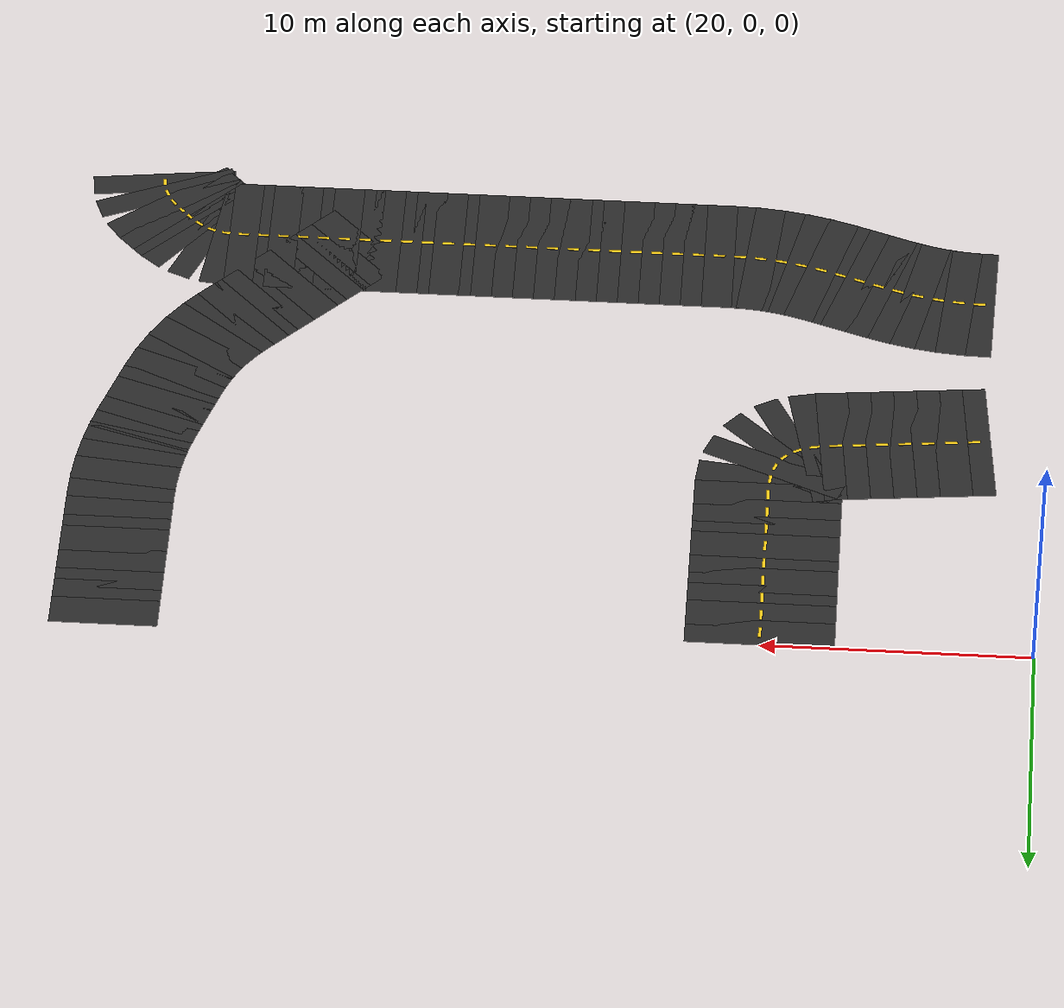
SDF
<sdf version="1.7">
 <world name="campus_delivery">
  <model name="campus_roads">
   <static>true</static>
   <link name="south_service_loop_0052">
    <pose>22.398 -18.013 0.002 0 0 -0.031775</pose>
    <visual name="visual">
     <geometry><box><size>1.146 5.500 0.004</size></box></geometry>
     <material><ambient>0.160 0.160 0.160 1.000</ambient><diffuse>0.160 0.160 0.160 1.000</diffuse></material>
    </visual>
    <visual name="center_line">
     <pose>0 0 0.008 0 0 0</pose>
     <geometry><box><size>0.438 0.120 0.012</size></box></geometry>
     <material><ambient>0.950 0.780 0.080 1.000</ambient><diffuse>0.950 0.780 0.080 1.000</diffuse></material>
    </visual>
   </link>
   <link name="south_service_loop_0053">
    <pose>23.190 -18.063 0.002 0 0 -0.096055</pose>
    <visual name="visual">
     <geometry><box><size>1.141 5.500 0.004</size></box></geometry>
     <material><ambient>0.160 0.160 0.160 1.000</ambient><diffuse>0.160 0.160 0.160 1.000</diffuse></material>
    </visual>
    <visual name="center_line">
     <pose>0 0 0.008 0 0 0</pose>
     <geometry><box><size>0.435 0.120 0.012</size></box></geometry>
     <material><ambient>0.950 0.780 0.080 1.000</ambient><diffuse>0.950 0.780 0.080 1.000</diffuse></material>
    </visual>
   </link>
   <link name="south_service_loop_0054">
    <pose>23.973 -18.164 0.002 0 0 -0.160875</pose>
    <visual name="visual">
     <geometry><box><size>1.140 5.500 0.004</size></box></geometry>
     <material><ambient>0.160 0.160 0.160 1.000</ambient><diffuse>0.160 0.160 0.160 1.000</diffuse></material>
    </visual>
    <visual name="center_line">
     <pose>0 0 0.008 0 0 0</pose>
     <geometry><box><size>0.434 0.120 0.012</size></box></geometry>
     <material><ambient>0.950 0.780 0.080 1.000</ambient><diffuse>0.950 0.780 0.080 1.000</diffuse></material>
    </visual>
   </link>
   <link name="south_service_loop_0055">
    <pose>24.749 -18.316 0.002 0 0 -0.225695</pose>
    <visual name="visual">
     <geometry><box><size>1.141 5.500 0.004</size></box></geometry>
     <material><ambient>0.160 0.160 0.160 1.000</ambient><diffuse>0.160 0.160 0.160 1.000</diffuse></material>
    </visual>
    <visual name="center_line">
     <pose>0 0 0.008 0 0 0</pose>
     <geometry><box><size>0.435 0.120 0.012</size></box></geometry>
     <material><ambient>0.950 0.780 0.080 1.000</ambient><diffuse>0.950 0.780 0.080 1.000</diffuse></material>
    </visual>
   </link>
   <link name="south_service_loop_0056">
    <pose>25.516 -18.519 0.002 0 0 -0.289975</pose>
    <visual name="visual">
     <geometry><box><size>1.146 5.500 0.004</size></box></geometry>
     <material><ambient>0.160 0.160 0.160 1.000</ambient><diffuse>0.160 0.160 0.160 1.000</diffuse></material>
    </visual>
    <visual name="center_line">
     <pose>0 0 0.008 0 0 0</pose>
     <geometry><box><size>0.438 0.120 0.012</size></box></geometry>
     <material><ambient>0.950 0.780 0.080 1.000</ambient><diffuse>0.950 0.780 0.080 1.000</diffuse></material>
    </visual>
   </link>
   <link name="south_service_loop_0057">
    <pose>26.265 -18.755 0.002 0 0 -0.321751</pose>
    <visual name="visual">
     <geometry><box><size>1.125 5.500 0.004</size></box></geometry>
     <material><ambient>0.160 0.160 0.160 1.000</ambient><diffuse>0.160 0.160 0.160 1.000</diffuse></material>
    </visual>
    <visual name="center_line">
     <pose>0 0 0.008 0 0 0</pose>
     <geometry><box><size>0.426 0.120 0.012</size></box></geometry>
     <material><ambient>0.950 0.780 0.080 1.000</ambient><diffuse>0.950 0.780 0.080 1.000</diffuse></material>
    </visual>
   </link>
   <link name="south_service_loop_0058">
    <pose>27.000 -19.000 0.002 0 0 -0.321751</pose>
    <visual name="visual">
     <geometry><box><size>1.125 5.500 0.004</size></box></geometry>
     <material><ambient>0.160 0.160 0.160 1.000</ambient><diffuse>0.160 0.160 0.160 1.000</diffuse></material>
    </visual>
    <visual name="center_line">
     <pose>0 0 0.008 0 0 0</pose>
     <geometry><box><size>0.426 0.120 0.012</size></box></geometry>
     <material><ambient>0.950 0.780 0.080 1.000</ambient><diffuse>0.950 0.780 0.080 1.000</diffuse></material>
    </visual>
   </link>
   <link name="south_service_loop_0059">
    <pose>27.735 -19.245 0.002 0 0 -0.321751</pose>
    <visual name="visual">
     <geometry><box><size>1.125 5.500 0.004</size></box></geometry>
     <material><ambient>0.160 0.160 0.160 1.000</ambient><diffuse>0.160 0.160 0.160 1.000</diffuse></material>
    </visual>
    <visual name="center_line">
     <pose>0 0 0.008 0 0 0</pose>
     <geometry><box><size>0.426 0.120 0.012</size></box></geometry>
     <material><ambient>0.950 0.780 0.080 1.000</ambient><diffuse>0.950 0.780 0.080 1.000</diffuse></material>
    </visual>
   </link>
   <link name="south_service_loop_0060">
    <pose>28.484 -19.481 0.002 0 0 -0.289975</pose>
    <visual name="visual">
     <geometry><box><size>1.146 5.500 0.004</size></box></geometry>
     <material><ambient>0.160 0.160 0.160 1.000</ambient><diffuse>0.160 0.160 0.160 1.000</diffuse></material>
    </visual>
    <visual name="center_line">
     <pose>0 0 0.008 0 0 0</pose>
     <geometry><box><size>0.438 0.120 0.012</size></box></geometry>
     <material><ambient>0.950 0.780 0.080 1.000</ambient><diffuse>0.950 0.780 0.080 1.000</diffuse></material>
    </visual>
   </link>
   <link name="south_service_loop_0061">
    <pose>29.251 -19.684 0.002 0 0 -0.225695</pose>
    <visual name="visual">
     <geometry><box><size>1.141 5.500 0.004</size></box></geometry>
     <material><ambient>0.160 0.160 0.160 1.000</ambient><diffuse>0.160 0.160 0.160 1.000</diffuse></material>
    </visual>
    <visual name="center_line">
     <pose>0 0 0.008 0 0 0</pose>
     <geometry><box><size>0.435 0.120 0.012</size></box></geometry>
     <material><ambient>0.950 0.780 0.080 1.000</ambient><diffuse>0.950 0.780 0.080 1.000</diffuse></material>
    </visual>
   </link>
   <link name="south_service_loop_0062">
    <pose>30.027 -19.836 0.002 0 0 -0.160875</pose>
    <visual name="visual">
     <geometry><box><size>1.140 5.500 0.004</size></box></geometry>
     <material><ambient>0.160 0.160 0.160 1.000</ambient><diffuse>0.160 0.160 0.160 1.000</diffuse></material>
    </visual>
    <visual name="center_line">
     <pose>0 0 0.008 0 0 0</pose>
     <geometry><box><size>0.434 0.120 0.012</size></box></geometry>
     <material><ambient>0.950 0.780 0.080 1.000</ambient><diffuse>0.950 0.780 0.080 1.000</diffuse></material>
    </visual>
   </link>
   <link name="south_service_loop_0063">
    <pose>30.810 -19.937 0.002 0 0 -0.096055</pose>
    <visual name="visual">
     <geometry><box><size>1.141 5.500 0.004</size></box></geometry>
     <material><ambient>0.160 0.160 0.160 1.000</ambient><diffuse>0.160 0.160 0.160 1.000</diffuse></material>
    </visual>
    <visual name="center_line">
     <pose>0 0 0.008 0 0 0</pose>
     <geometry><box><size>0.435 0.120 0.012</size></box></geometry>
     <material><ambient>0.950 0.780 0.080 1.000</ambient><diffuse>0.950 0.780 0.080 1.000</diffuse></material>
    </visual>
   </link>
   <link name="south_service_loop_0064">
    <pose>31.602 -19.987 0.002 0 0 -0.031775</pose>
    <visual name="visual">
     <geometry><box><size>1.146 5.500 0.004</size></box></geometry>
     <material><ambient>0.160 0.160 0.160 1.000</ambient><diffuse>0.160 0.160 0.160 1.000</diffuse></material>
    </visual>
    <visual name="center_line">
     <pose>0 0 0.008 0 0 0</pose>
     <geometry><box><size>0.438 0.120 0.012</size></box></geometry>
     <material><ambient>0.950 0.780 0.080 1.000</ambient><diffuse>0.950 0.780 0.080 1.000</diffuse></material>
    </visual>
   </link>
   <link name="south_service_loop_0065">
    <pose>32.400 -20.000 0.002 0 0 0.000000</pose>
    <visual name="visual">
     <geometry><box><size>1.150 5.500 0.004</size></box></geometry>
     <material><ambient>0.160 0.160 0.160 1.000</ambient><diffuse>0.160 0.160 0.160 1.000</diffuse></material>
    </visual>
    <visual name="center_line">
     <pose>0 0 0.008 0 0 0</pose>
     <geometry><box><size>0.440 0.120 0.012</size></box></geometry>
     <material><ambient>0.950 0.780 0.080 1.000</ambient><diffuse>0.950 0.780 0.080 1.000</diffuse></material>
    </visual>
   </link>
   <link name="south_service_loop_0066">
    <pose>33.200 -20.000 0.002 0 0 0.000000</pose>
    <visual name="visual">
     <geometry><box><size>1.150 5.500 0.004</size></box></geometry>
     <material><ambient>0.160 0.160 0.160 1.000</ambient><diffuse>0.160 0.160 0.160 1.000</diffuse></material>
    </visual>
    <visual name="center_line">
     <pose>0 0 0.008 0 0 0</pose>
     <geometry><box><size>0.440 0.120 0.012</size></box></geometry>
     <material><ambient>0.950 0.780 0.080 1.000</ambient><diffuse>0.950 0.780 0.080 1.000</diffuse></material>
    </visual>
   </link>
   <link name="south_service_loop_0067">
    <pose>34.000 -20.000 0.002 0 0 0.000000</pose>
    <visual name="visual">
     <geometry><box><size>1.150 5.500 0.004</size></box></geometry>
     <material><ambient>0.160 0.160 0.160 1.000</ambient><diffuse>0.160 0.160 0.160 1.000</diffuse></material>
    </visual>
    <visual name="center_line">
     <pose>0 0 0.008 0 0 0</pose>
     <geometry><box><size>0.440 0.120 0.012</size></box></geometry>
     <material><ambient>0.950 0.780 0.080 1.000</ambient><diffuse>0.950 0.780 0.080 1.000</diffuse></material>
    </visual>
   </link>
   <link name="south_service_loop_0068">
    <pose>34.800 -20.000 0.002 0 0 0.000000</pose>
    <visual name="visual">
     <geometry><box><size>1.150 5.500 0.004</size></box></geometry>
     <material><ambient>0.160 0.160 0.160 1.000</ambient><diffuse>0.160 0.160 0.160 1.000</diffuse></material>
    </visual>
    <visual name="center_line">
     <pose>0 0 0.008 0 0 0</pose>
     <geometry><box><size>0.440 0.120 0.012</size></box></geometry>
     <material><ambient>0.950 0.780 0.080 1.000</ambient><diffuse>0.950 0.780 0.080 1.000</diffuse></material>
    </visual>
   </link>
   <link name="south_service_loop_0069">
    <pose>35.600 -20.000 0.002 0 0 0.000000</pose>
    <visual name="visual">
     <geometry><box><size>1.150 5.500 0.004</size></box></geometry>
     <material><ambient>0.160 0.160 0.160 1.000</ambient><diffuse>0.160 0.160 0.160 1.000</diffuse></material>
    </visual>
    <visual name="center_line">
     <pose>0 0 0.008 0 0 0</pose>
     <geometry><box><size>0.440 0.120 0.012</size></box></geometry>
     <material><ambient>0.950 0.780 0.080 1.000</ambient><diffuse>0.950 0.780 0.080 1.000</diffuse></material>
    </visual>
   </link>
   <link name="south_service_loop_0070">
    <pose>36.400 -20.000 0.002 0 0 -0.000000</pose>
    <visual name="visual">
     <geometry><box><size>1.150 5.500 0.004</size></box></geometry>
     <material><ambient>0.160 0.160 0.160 1.000</ambient><diffuse>0.160 0.160 0.160 1.000</diffuse></material>
    </visual>
    <visual name="center_line">
     <pose>0 0 0.008 0 0 0</pose>
     <geometry><box><size>0.440 0.120 0.012</size></box></geometry>
     <material><ambient>0.950 0.780 0.080 1.000</ambient><diffuse>0.950 0.780 0.080 1.000</diffuse></material>
    </visual>
   </link>
   <link name="south_service_loop_0071">
    <pose>37.200 -20.000 0.002 0 0 0.000000</pose>
    <visual name="visual">
     <geometry><box><size>1.150 5.500 0.004</size></box></geometry>
     <material><ambient>0.160 0.160 0.160 1.000</ambient><diffuse>0.160 0.160 0.160 1.000</diffuse></material>
    </visual>
    <visual name="center_line">
     <pose>0 0 0.008 0 0 0</pose>
     <geometry><box><size>0.440 0.120 0.012</size></box></geometry>
     <material><ambient>0.950 0.780 0.080 1.000</ambient><diffuse>0.950 0.780 0.080 1.000</diffuse></material>
    </visual>
   </link>
   <link name="south_service_loop_0072">
    <pose>38.000 -20.000 0.002 0 0 -0.000000</pose>
    <visual name="visual">
     <geometry><box><size>1.150 5.500 0.004</size></box></geometry>
     <material><ambient>0.160 0.160 0.160 1.000</ambient><diffuse>0.160 0.160 0.160 1.000</diffuse></material>
    </visual>
    <visual name="center_line">
     <pose>0 0 0.008 0 0 0</pose>
     <geometry><box><size>0.440 0.120 0.012</size></box></geometry>
     <material><ambient>0.950 0.780 0.080 1.000</ambient><diffuse>0.950 0.780 0.080 1.000</diffuse></material>
    </visual>
   </link>
   <link name="south_service_loop_0073">
    <pose>38.800 -20.000 0.002 0 0 0.000000</pose>
    <visual name="visual">
     <geometry><box><size>1.150 5.500 0.004</size></box></geometry>
     <material><ambient>0.160 0.160 0.160 1.000</ambient><diffuse>0.160 0.160 0.160 1.000</diffuse></material>
    </visual>
    <visual name="center_line">
     <pose>0 0 0.008 0 0 0</pose>
     <geometry><box><size>0.440 0.120 0.012</size></box></geometry>
     <material><ambient>0.950 0.780 0.080 1.000</ambient><diffuse>0.950 0.780 0.080 1.000</diffuse></material>
    </visual>
   </link>
   <link name="south_service_loop_0074">
    <pose>39.600 -20.000 0.002 0 0 0.000000</pose>
    <visual name="visual">
     <geometry><box><size>1.150 5.500 0.004</size></box></geometry>
     <material><ambient>0.160 0.160 0.160 1.000</ambient><diffuse>0.160 0.160 0.160 1.000</diffuse></material>
    </visual>
    <visual name="center_line">
     <pose>0 0 0.008 0 0 0</pose>
     <geometry><box><size>0.440 0.120 0.012</size></box></geometry>
     <material><ambient>0.950 0.780 0.080 1.000</ambient><diffuse>0.950 0.780 0.080 1.000</diffuse></material>
    </visual>
   </link>
   <link name="south_service_loop_0075">
    <pose>40.400 -20.000 0.002 0 0 0.000000</pose>
    <visual name="visual">
     <geometry><box><size>1.150 5.500 0.004</size></box></geometry>
     <material><ambient>0.160 0.160 0.160 1.000</ambient><diffuse>0.160 0.160 0.160 1.000</diffuse></material>
    </visual>
    <visual name="center_line">
     <pose>0 0 0.008 0 0 0</pose>
     <geometry><box><size>0.440 0.120 0.012</size></box></geometry>
     <material><ambient>0.950 0.780 0.080 1.000</ambient><diffuse>0.950 0.780 0.080 1.000</diffuse></material>
    </visual>
   </link>
   <link name="south_service_loop_0076">
    <pose>41.200 -20.000 0.002 0 0 0.000000</pose>
    <visual name="visual">
     <geometry><box><size>1.150 5.500 0.004</size></box></geometry>
     <material><ambient>0.160 0.160 0.160 1.000</ambient><diffuse>0.160 0.160 0.160 1.000</diffuse></material>
    </visual>
    <visual name="center_line">
     <pose>0 0 0.008 0 0 0</pose>
     <geometry><box><size>0.440 0.120 0.012</size></box></geometry>
     <material><ambient>0.950 0.780 0.080 1.000</ambient><diffuse>0.950 0.780 0.080 1.000</diffuse></material>
    </visual>
   </link>
   <link name="south_service_loop_0077">
    <pose>42.000 -20.000 0.002 0 0 0.000000</pose>
    <visual name="visual">
     <geometry><box><size>1.150 5.500 0.004</size></box></geometry>
     <material><ambient>0.160 0.160 0.160 1.000</ambient><diffuse>0.160 0.160 0.160 1.000</diffuse></material>
    </visual>
    <visual name="center_line">
     <pose>0 0 0.008 0 0 0</pose>
     <geometry><box><size>0.440 0.120 0.012</size></box></geometry>
     <material><ambient>0.950 0.780 0.080 1.000</ambient><diffuse>0.950 0.780 0.080 1.000</diffuse></material>
    </visual>
   </link>
   <link name="south_service_loop_0078">
    <pose>42.800 -20.000 0.002 0 0 0.000000</pose>
    <visual name="visual">
     <geometry><box><size>1.150 5.500 0.004</size></box></geometry>
     <material><ambient>0.160 0.160 0.160 1.000</ambient><diffuse>0.160 0.160 0.160 1.000</diffuse></material>
    </visual>
    <visual name="center_line">
     <pose>0 0 0.008 0 0 0</pose>
     <geometry><box><size>0.440 0.120 0.012</size></box></geometry>
     <material><ambient>0.950 0.780 0.080 1.000</ambient><diffuse>0.950 0.780 0.080 1.000</diffuse></material>
    </visual>
   </link>
   <link name="south_service_loop_0079">
    <pose>43.600 -20.000 0.002 0 0 0.000000</pose>
    <visual name="visual">
     <geometry><box><size>1.150 5.500 0.004</size></box></geometry>
     <material><ambient>0.160 0.160 0.160 1.000</ambient><diffuse>0.160 0.160 0.160 1.000</diffuse></material>
    </visual>
    <visual name="center_line">
     <pose>0 0 0.008 0 0 0</pose>
     <geometry><box><size>0.440 0.120 0.012</size></box></geometry>
     <material><ambient>0.950 0.780 0.080 1.000</ambient><diffuse>0.950 0.780 0.080 1.000</diffuse></material>
    </visual>
   </link>
   <link name="south_service_loop_0080">
    <pose>44.400 -20.000 0.002 0 0 -0.000000</pose>
    <visual name="visual">
     <geometry><box><size>1.150 5.500 0.004</size></box></geometry>
     <material><ambient>0.160 0.160 0.160 1.000</ambient><diffuse>0.160 0.160 0.160 1.000</diffuse></material>
    </visual>
    <visual name="center_line">
     <pose>0 0 0.008 0 0 0</pose>
     <geometry><box><size>0.440 0.120 0.012</size></box></geometry>
     <material><ambient>0.950 0.780 0.080 1.000</ambient><diffuse>0.950 0.780 0.080 1.000</diffuse></material>
    </visual>
   </link>
   <link name="south_service_loop_0081">
    <pose>45.200 -20.000 0.002 0 0 0.000000</pose>
    <visual name="visual">
     <geometry><box><size>1.150 5.500 0.004</size></box></geometry>
     <material><ambient>0.160 0.160 0.160 1.000</ambient><diffuse>0.160 0.160 0.160 1.000</diffuse></material>
    </visual>
    <visual name="center_line">
     <pose>0 0 0.008 0 0 0</pose>
     <geometry><box><size>0.440 0.120 0.012</size></box></geometry>
     <material><ambient>0.950 0.780 0.080 1.000</ambient><diffuse>0.950 0.780 0.080 1.000</diffuse></material>
    </visual>
   </link>
   <link name="south_service_loop_0082">
    <pose>46.000 -20.000 0.002 0 0 -0.000000</pose>
    <visual name="visual">
     <geometry><box><size>1.150 5.500 0.004</size></box></geometry>
     <material><ambient>0.160 0.160 0.160 1.000</ambient><diffuse>0.160 0.160 0.160 1.000</diffuse></material>
    </visual>
    <visual name="center_line">
     <pose>0 0 0.008 0 0 0</pose>
     <geometry><box><size>0.440 0.120 0.012</size></box></geometry>
     <material><ambient>0.950 0.780 0.080 1.000</ambient><diffuse>0.950 0.780 0.080 1.000</diffuse></material>
    </visual>
   </link>
   <link name="south_service_loop_0083">
    <pose>46.800 -20.000 0.002 0 0 0.000000</pose>
    <visual name="visual">
     <geometry><box><size>1.150 5.500 0.004</size></box></geometry>
     <material><ambient>0.160 0.160 0.160 1.000</ambient><diffuse>0.160 0.160 0.160 1.000</diffuse></material>
    </visual>
    <visual name="center_line">
     <pose>0 0 0.008 0 0 0</pose>
     <geometry><box><size>0.440 0.120 0.012</size></box></geometry>
     <material><ambient>0.950 0.780 0.080 1.000</ambient><diffuse>0.950 0.780 0.080 1.000</diffuse></material>
    </visual>
   </link>
   <link name="south_service_loop_0084">
    <pose>47.600 -20.000 0.002 0 0 0.000000</pose>
    <visual name="visual">
     <geometry><box><size>1.150 5.500 0.004</size></box></geometry>
     <material><ambient>0.160 0.160 0.160 1.000</ambient><diffuse>0.160 0.160 0.160 1.000</diffuse></material>
    </visual>
    <visual name="center_line">
     <pose>0 0 0.008 0 0 0</pose>
     <geometry><box><size>0.440 0.120 0.012</size></box></geometry>
     <material><ambient>0.950 0.780 0.080 1.000</ambient><diffuse>0.950 0.780 0.080 1.000</diffuse></material>
    </visual>
   </link>
   <link name="south_service_loop_0085">
    <pose>48.382 -20.000 0.002 0 0 0.000000</pose>
    <visual name="visual">
     <geometry><box><size>1.114 5.500 0.004</size></box></geometry>
     <material><ambient>0.160 0.160 0.160 1.000</ambient><diffuse>0.160 0.160 0.160 1.000</diffuse></material>
    </visual>
    <visual name="center_line">
     <pose>0 0 0.008 0 0 0</pose>
     <geometry><box><size>0.420 0.120 0.012</size></box></geometry>
     <material><ambient>0.950 0.780 0.080 1.000</ambient><diffuse>0.950 0.780 0.080 1.000</diffuse></material>
    </visual>
   </link>
   <link name="south_service_loop_0086">
    <pose>49.146 -20.000 0.002 0 0 0.000000</pose>
    <visual name="visual">
     <geometry><box><size>1.114 5.500 0.004</size></box></geometry>
     <material><ambient>0.160 0.160 0.160 1.000</ambient><diffuse>0.160 0.160 0.160 1.000</diffuse></material>
    </visual>
    <visual name="center_line">
     <pose>0 0 0.008 0 0 0</pose>
     <geometry><box><size>0.420 0.120 0.012</size></box></geometry>
     <material><ambient>0.950 0.780 0.080 1.000</ambient><diffuse>0.950 0.780 0.080 1.000</diffuse></material>
    </visual>
   </link>
   <link name="south_service_loop_0087">
    <pose>49.911 -20.000 0.002 0 0 0.000000</pose>
    <visual name="visual">
     <geometry><box><size>1.114 5.500 0.004</size></box></geometry>
     <material><ambient>0.160 0.160 0.160 1.000</ambient><diffuse>0.160 0.160 0.160 1.000</diffuse></material>
    </visual>
    <visual name="center_line">
     <pose>0 0 0.008 0 0 0</pose>
     <geometry><box><size>0.420 0.120 0.012</size></box></geometry>
     <material><ambient>0.950 0.780 0.080 1.000</ambient><diffuse>0.950 0.780 0.080 1.000</diffuse></material>
    </visual>
   </link>
   <link name="south_service_loop_0088">
    <pose>50.675 -20.000 0.002 0 0 0.000000</pose>
    <visual name="visual">
     <geometry><box><size>1.114 5.500 0.004</size></box></geometry>
     <material><ambient>0.160 0.160 0.160 1.000</ambient><diffuse>0.160 0.160 0.160 1.000</diffuse></material>
    </visual>
    <visual name="center_line">
     <pose>0 0 0.008 0 0 0</pose>
     <geometry><box><size>0.420 0.120 0.012</size></box></geometry>
     <material><ambient>0.950 0.780 0.080 1.000</ambient><diffuse>0.950 0.780 0.080 1.000</diffuse></material>
    </visual>
   </link>
   <link name="south_service_loop_0089">
    <pose>51.356 -20.037 0.002 0 0 -0.123271</pose>
    <visual name="visual">
     <geometry><box><size>0.952 5.500 0.004</size></box></geometry>
     <material><ambient>0.160 0.160 0.160 1.000</ambient><diffuse>0.160 0.160 0.160 1.000</diffuse></material>
    </visual>
    <visual name="center_line">
     <pose>0 0 0.008 0 0 0</pose>
     <geometry><box><size>0.331 0.120 0.012</size></box></geometry>
     <material><ambient>0.950 0.780 0.080 1.000</ambient><diffuse>0.950 0.780 0.080 1.000</diffuse></material>
    </visual>
   </link>
   <link name="south_service_loop_0090">
    <pose>51.923 -20.185 0.002 0 0 -0.392699</pose>
    <visual name="visual">
     <geometry><box><size>0.931 5.500 0.004</size></box></geometry>
     <material><ambient>0.160 0.160 0.160 1.000</ambient><diffuse>0.160 0.160 0.160 1.000</diffuse></material>
    </visual>
    <visual name="center_line">
     <pose>0 0 0.008 0 0 0</pose>
     <geometry><box><size>0.319 0.120 0.012</size></box></geometry>
     <material><ambient>0.950 0.780 0.080 1.000</ambient><diffuse>0.950 0.780 0.080 1.000</diffuse></material>
    </visual>
   </link>
   <link name="south_service_loop_0091">
    <pose>52.429 -20.481 0.002 0 0 -0.662127</pose>
    <visual name="visual">
     <geometry><box><size>0.952 5.500 0.004</size></box></geometry>
     <material><ambient>0.160 0.160 0.160 1.000</ambient><diffuse>0.160 0.160 0.160 1.000</diffuse></material>
    </visual>
    <visual name="center_line">
     <pose>0 0 0.008 0 0 0</pose>
     <geometry><box><size>0.331 0.120 0.012</size></box></geometry>
     <material><ambient>0.950 0.780 0.080 1.000</ambient><diffuse>0.950 0.780 0.080 1.000</diffuse></material>
    </visual>
   </link>
   <link name="south_service_loop_0092">
    <pose>52.833 -20.833 0.002 0 0 -0.785398</pose>
    <visual name="visual">
     <geometry><box><size>0.821 5.500 0.004</size></box></geometry>
     <material><ambient>0.160 0.160 0.160 1.000</ambient><diffuse>0.160 0.160 0.160 1.000</diffuse></material>
    </visual>
    <visual name="center_line">
     <pose>0 0 0.008 0 0 0</pose>
     <geometry><box><size>0.259 0.120 0.012</size></box></geometry>
     <material><ambient>0.950 0.780 0.080 1.000</ambient><diffuse>0.950 0.780 0.080 1.000</diffuse></material>
    </visual>
   </link>
   <link name="south_service_loop_0093">
    <pose>53.167 -21.167 0.002 0 0 -0.785398</pose>
    <visual name="visual">
     <geometry><box><size>0.821 5.500 0.004</size></box></geometry>
     <material><ambient>0.160 0.160 0.160 1.000</ambient><diffuse>0.160 0.160 0.160 1.000</diffuse></material>
    </visual>
    <visual name="center_line">
     <pose>0 0 0.008 0 0 0</pose>
     <geometry><box><size>0.259 0.120 0.012</size></box></geometry>
     <material><ambient>0.950 0.780 0.080 1.000</ambient><diffuse>0.950 0.780 0.080 1.000</diffuse></material>
    </visual>
   </link>
   <link name="south_service_loop_0094">
    <pose>53.519 -21.571 0.002 0 0 -0.908669</pose>
    <visual name="visual">
     <geometry><box><size>0.952 5.500 0.004</size></box></geometry>
     <material><ambient>0.160 0.160 0.160 1.000</ambient><diffuse>0.160 0.160 0.160 1.000</diffuse></material>
    </visual>
    <visual name="center_line">
     <pose>0 0 0.008 0 0 0</pose>
     <geometry><box><size>0.331 0.120 0.012</size></box></geometry>
     <material><ambient>0.950 0.780 0.080 1.000</ambient><diffuse>0.950 0.780 0.080 1.000</diffuse></material>
    </visual>
   </link>
   <link name="south_service_loop_0095">
    <pose>53.815 -22.077 0.002 0 0 -1.178097</pose>
    <visual name="visual">
     <geometry><box><size>0.931 5.500 0.004</size></box></geometry>
     <material><ambient>0.160 0.160 0.160 1.000</ambient><diffuse>0.160 0.160 0.160 1.000</diffuse></material>
    </visual>
    <visual name="center_line">
     <pose>0 0 0.008 0 0 0</pose>
     <geometry><box><size>0.319 0.120 0.012</size></box></geometry>
     <material><ambient>0.950 0.780 0.080 1.000</ambient><diffuse>0.950 0.780 0.080 1.000</diffuse></material>
    </visual>
   </link>
   <link name="south_service_loop_0096">
    <pose>53.963 -22.644 0.002 0 0 -1.447525</pose>
    <visual name="visual">
     <geometry><box><size>0.952 5.500 0.004</size></box></geometry>
     <material><ambient>0.160 0.160 0.160 1.000</ambient><diffuse>0.160 0.160 0.160 1.000</diffuse></material>
    </visual>
    <visual name="center_line">
     <pose>0 0 0.008 0 0 0</pose>
     <geometry><box><size>0.331 0.120 0.012</size></box></geometry>
     <material><ambient>0.950 0.780 0.080 1.000</ambient><diffuse>0.950 0.780 0.080 1.000</diffuse></material>
    </visual>
   </link>
   <link name="campus_main_trunk_0028">
    <pose>22.420 -10.758 0.002 0 0 0.099669</pose>
    <visual name="visual">
     <geometry><box><size>1.214 5.500 0.004</size></box></geometry>
     <material><ambient>0.160 0.160 0.160 1.000</ambient><diffuse>0.160 0.160 0.160 1.000</diffuse></material>
    </visual>
    <visual name="center_line">
     <pose>0 0 0.008 0 0 0</pose>
     <geometry><box><size>0.475 0.120 0.012</size></box></geometry>
     <material><ambient>0.950 0.780 0.080 1.000</ambient><diffuse>0.950 0.780 0.080 1.000</diffuse></material>
    </visual>
   </link>
   <link name="campus_main_trunk_0029">
    <pose>23.280 -10.672 0.002 0 0 0.099669</pose>
    <visual name="visual">
     <geometry><box><size>1.214 5.500 0.004</size></box></geometry>
     <material><ambient>0.160 0.160 0.160 1.000</ambient><diffuse>0.160 0.160 0.160 1.000</diffuse></material>
    </visual>
    <visual name="center_line">
     <pose>0 0 0.008 0 0 0</pose>
     <geometry><box><size>0.475 0.120 0.012</size></box></geometry>
     <material><ambient>0.950 0.780 0.080 1.000</ambient><diffuse>0.950 0.780 0.080 1.000</diffuse></material>
    </visual>
   </link>
   <link name="campus_main_trunk_0030">
    <pose>24.140 -10.586 0.002 0 0 0.099669</pose>
    <visual name="visual">
     <geometry><box><size>1.214 5.500 0.004</size></box></geometry>
     <material><ambient>0.160 0.160 0.160 1.000</ambient><diffuse>0.160 0.160 0.160 1.000</diffuse></material>
    </visual>
    <visual name="center_line">
     <pose>0 0 0.008 0 0 0</pose>
     <geometry><box><size>0.475 0.120 0.012</size></box></geometry>
     <material><ambient>0.950 0.780 0.080 1.000</ambient><diffuse>0.950 0.780 0.080 1.000</diffuse></material>
    </visual>
   </link>
   <link name="campus_main_trunk_0031">
    <pose>25.000 -10.500 0.002 0 0 0.099669</pose>
    <visual name="visual">
     <geometry><box><size>1.214 5.500 0.004</size></box></geometry>
     <material><ambient>0.160 0.160 0.160 1.000</ambient><diffuse>0.160 0.160 0.160 1.000</diffuse></material>
    </visual>
    <visual name="center_line">
     <pose>0 0 0.008 0 0 0</pose>
     <geometry><box><size>0.475 0.120 0.012</size></box></geometry>
     <material><ambient>0.950 0.780 0.080 1.000</ambient><diffuse>0.950 0.780 0.080 1.000</diffuse></material>
    </visual>
   </link>
   <link name="campus_main_trunk_0032">
    <pose>25.860 -10.414 0.002 0 0 0.099669</pose>
    <visual name="visual">
     <geometry><box><size>1.214 5.500 0.004</size></box></geometry>
     <material><ambient>0.160 0.160 0.160 1.000</ambient><diffuse>0.160 0.160 0.160 1.000</diffuse></material>
    </visual>
    <visual name="center_line">
     <pose>0 0 0.008 0 0 0</pose>
     <geometry><box><size>0.475 0.120 0.012</size></box></geometry>
     <material><ambient>0.950 0.780 0.080 1.000</ambient><diffuse>0.950 0.780 0.080 1.000</diffuse></material>
    </visual>
   </link>
   <link name="campus_main_trunk_0033">
    <pose>26.720 -10.328 0.002 0 0 0.099669</pose>
    <visual name="visual">
     <geometry><box><size>1.214 5.500 0.004</size></box></geometry>
     <material><ambient>0.160 0.160 0.160 1.000</ambient><diffuse>0.160 0.160 0.160 1.000</diffuse></material>
    </visual>
    <visual name="center_line">
     <pose>0 0 0.008 0 0 0</pose>
     <geometry><box><size>0.475 0.120 0.012</size></box></geometry>
     <material><ambient>0.950 0.780 0.080 1.000</ambient><diffuse>0.950 0.780 0.080 1.000</diffuse></material>
    </visual>
   </link>
   <link name="campus_main_trunk_0034">
    <pose>27.580 -10.242 0.002 0 0 0.099669</pose>
    <visual name="visual">
     <geometry><box><size>1.214 5.500 0.004</size></box></geometry>
     <material><ambient>0.160 0.160 0.160 1.000</ambient><diffuse>0.160 0.160 0.160 1.000</diffuse></material>
    </visual>
    <visual name="center_line">
     <pose>0 0 0.008 0 0 0</pose>
     <geometry><box><size>0.475 0.120 0.012</size></box></geometry>
     <material><ambient>0.950 0.780 0.080 1.000</ambient><diffuse>0.950 0.780 0.080 1.000</diffuse></material>
    </visual>
   </link>
   <link name="campus_main_trunk_0035">
    <pose>28.368 -10.123 0.002 0 0 0.208587</pose>
    <visual name="visual">
     <geometry><box><size>1.082 5.500 0.004</size></box></geometry>
     <material><ambient>0.160 0.160 0.160 1.000</ambient><diffuse>0.160 0.160 0.160 1.000</diffuse></material>
    </visual>
    <visual name="center_line">
     <pose>0 0 0.008 0 0 0</pose>
     <geometry><box><size>0.403 0.120 0.012</size></box></geometry>
     <material><ambient>0.950 0.780 0.080 1.000</ambient><diffuse>0.950 0.780 0.080 1.000</diffuse></material>
    </visual>
   </link>
   <link name="campus_main_trunk_0036">
    <pose>29.005 -9.900 0.002 0 0 0.487912</pose>
    <visual name="visual">
     <geometry><box><size>0.981 5.500 0.004</size></box></geometry>
     <material><ambient>0.160 0.160 0.160 1.000</ambient><diffuse>0.160 0.160 0.160 1.000</diffuse></material>
    </visual>
    <visual name="center_line">
     <pose>0 0 0.008 0 0 0</pose>
     <geometry><box><size>0.347 0.120 0.012</size></box></geometry>
     <material><ambient>0.950 0.780 0.080 1.000</ambient><diffuse>0.950 0.780 0.080 1.000</diffuse></material>
    </visual>
   </link>
   <link name="campus_main_trunk_0037">
    <pose>29.483 -9.532 0.002 0 0 0.835232</pose>
    <visual name="visual">
     <geometry><box><size>0.943 5.500 0.004</size></box></geometry>
     <material><ambient>0.160 0.160 0.160 1.000</ambient><diffuse>0.160 0.160 0.160 1.000</diffuse></material>
    </visual>
    <visual name="center_line">
     <pose>0 0 0.008 0 0 0</pose>
     <geometry><box><size>0.326 0.120 0.012</size></box></geometry>
     <material><ambient>0.950 0.780 0.080 1.000</ambient><diffuse>0.950 0.780 0.080 1.000</diffuse></material>
    </visual>
   </link>
   <link name="campus_main_trunk_0038">
    <pose>29.801 -9.020 0.002 0 0 1.182553</pose>
    <visual name="visual">
     <geometry><box><size>0.981 5.500 0.004</size></box></geometry>
     <material><ambient>0.160 0.160 0.160 1.000</ambient><diffuse>0.160 0.160 0.160 1.000</diffuse></material>
    </visual>
    <visual name="center_line">
     <pose>0 0 0.008 0 0 0</pose>
     <geometry><box><size>0.347 0.120 0.012</size></box></geometry>
     <material><ambient>0.950 0.780 0.080 1.000</ambient><diffuse>0.950 0.780 0.080 1.000</diffuse></material>
    </visual>
   </link>
   <link name="campus_main_trunk_0039">
    <pose>29.960 -8.364 0.002 0 0 1.461878</pose>
    <visual name="visual">
     <geometry><box><size>1.082 5.500 0.004</size></box></geometry>
     <material><ambient>0.160 0.160 0.160 1.000</ambient><diffuse>0.160 0.160 0.160 1.000</diffuse></material>
    </visual>
    <visual name="center_line">
     <pose>0 0 0.008 0 0 0</pose>
     <geometry><box><size>0.403 0.120 0.012</size></box></geometry>
     <material><ambient>0.950 0.780 0.080 1.000</ambient><diffuse>0.950 0.780 0.080 1.000</diffuse></material>
    </visual>
   </link>
   <link name="campus_main_trunk_0040">
    <pose>30.000 -7.568 0.002 0 0 1.570796</pose>
    <visual name="visual">
     <geometry><box><size>1.214 5.500 0.004</size></box></geometry>
     <material><ambient>0.160 0.160 0.160 1.000</ambient><diffuse>0.160 0.160 0.160 1.000</diffuse></material>
    </visual>
    <visual name="center_line">
     <pose>0 0 0.008 0 0 0</pose>
     <geometry><box><size>0.475 0.120 0.012</size></box></geometry>
     <material><ambient>0.950 0.780 0.080 1.000</ambient><diffuse>0.950 0.780 0.080 1.000</diffuse></material>
    </visual>
   </link>
   <link name="campus_main_trunk_0041">
    <pose>30.000 -6.705 0.002 0 0 1.570796</pose>
    <visual name="visual">
     <geometry><box><size>1.214 5.500 0.004</size></box></geometry>
     <material><ambient>0.160 0.160 0.160 1.000</ambient><diffuse>0.160 0.160 0.160 1.000</diffuse></material>
    </visual>
    <visual name="center_line">
     <pose>0 0 0.008 0 0 0</pose>
     <geometry><box><size>0.475 0.120 0.012</size></box></geometry>
     <material><ambient>0.950 0.780 0.080 1.000</ambient><diffuse>0.950 0.780 0.080 1.000</diffuse></material>
    </visual>
   </link>
   <link name="campus_main_trunk_0042">
    <pose>30.000 -5.841 0.002 0 0 1.570796</pose>
    <visual name="visual">
     <geometry><box><size>1.214 5.500 0.004</size></box></geometry>
     <material><ambient>0.160 0.160 0.160 1.000</ambient><diffuse>0.160 0.160 0.160 1.000</diffuse></material>
    </visual>
    <visual name="center_line">
     <pose>0 0 0.008 0 0 0</pose>
     <geometry><box><size>0.475 0.120 0.012</size></box></geometry>
     <material><ambient>0.950 0.780 0.080 1.000</ambient><diffuse>0.950 0.780 0.080 1.000</diffuse></material>
    </visual>
   </link>
   <link name="campus_main_trunk_0043">
    <pose>30.000 -4.977 0.002 0 0 1.570796</pose>
    <visual name="visual">
     <geometry><box><size>1.214 5.500 0.004</size></box></geometry>
     <material><ambient>0.160 0.160 0.160 1.000</ambient><diffuse>0.160 0.160 0.160 1.000</diffuse></material>
    </visual>
    <visual name="center_line">
     <pose>0 0 0.008 0 0 0</pose>
     <geometry><box><size>0.475 0.120 0.012</size></box></geometry>
     <material><ambient>0.950 0.780 0.080 1.000</ambient><diffuse>0.950 0.780 0.080 1.000</diffuse></material>
    </visual>
   </link>
   <link name="campus_main_trunk_0044">
    <pose>30.000 -4.114 0.002 0 0 1.570796</pose>
    <visual name="visual">
     <geometry><box><size>1.214 5.500 0.004</size></box></geometry>
     <material><ambient>0.160 0.160 0.160 1.000</ambient><diffuse>0.160 0.160 0.160 1.000</diffuse></material>
    </visual>
    <visual name="center_line">
     <pose>0 0 0.008 0 0 0</pose>
     <geometry><box><size>0.475 0.120 0.012</size></box></geometry>
     <material><ambient>0.950 0.780 0.080 1.000</ambient><diffuse>0.950 0.780 0.080 1.000</diffuse></material>
    </visual>
   </link>
   <link name="campus_main_trunk_0045">
    <pose>30.000 -3.250 0.002 0 0 1.570796</pose>
    <visual name="visual">
     <geometry><box><size>1.214 5.500 0.004</size></box></geometry>
     <material><ambient>0.160 0.160 0.160 1.000</ambient><diffuse>0.160 0.160 0.160 1.000</diffuse></material>
    </visual>
    <visual name="center_line">
     <pose>0 0 0.008 0 0 0</pose>
     <geometry><box><size>0.475 0.120 0.012</size></box></geometry>
     <material><ambient>0.950 0.780 0.080 1.000</ambient><diffuse>0.950 0.780 0.080 1.000</diffuse></material>
    </visual>
   </link>
   <link name="campus_main_trunk_0046">
    <pose>30.000 -2.386 0.002 0 0 1.570796</pose>
    <visual name="visual">
     <geometry><box><size>1.214 5.500 0.004</size></box></geometry>
     <material><ambient>0.160 0.160 0.160 1.000</ambient><diffuse>0.160 0.160 0.160 1.000</diffuse></material>
    </visual>
    <visual name="center_line">
     <pose>0 0 0.008 0 0 0</pose>
     <geometry><box><size>0.475 0.120 0.012</size></box></geometry>
     <material><ambient>0.950 0.780 0.080 1.000</ambient><diffuse>0.950 0.780 0.080 1.000</diffuse></material>
    </visual>
   </link>
   <link name="campus_main_trunk_0047">
    <pose>30.000 -1.523 0.002 0 0 1.570796</pose>
    <visual name="visual">
     <geometry><box><size>1.214 5.500 0.004</size></box></geometry>
     <material><ambient>0.160 0.160 0.160 1.000</ambient><diffuse>0.160 0.160 0.160 1.000</diffuse></material>
    </visual>
    <visual name="center_line">
     <pose>0 0 0.008 0 0 0</pose>
     <geometry><box><size>0.475 0.120 0.012</size></box></geometry>
     <material><ambient>0.950 0.780 0.080 1.000</ambient><diffuse>0.950 0.780 0.080 1.000</diffuse></material>
    </visual>
   </link>
   <link name="campus_main_trunk_0048">
    <pose>30.000 -0.659 0.002 0 0 1.570796</pose>
    <visual name="visual">
     <geometry><box><size>1.214 5.500 0.004</size></box></geometry>
     <material><ambient>0.160 0.160 0.160 1.000</ambient><diffuse>0.160 0.160 0.160 1.000</diffuse></material>
    </visual>
    <visual name="center_line">
     <pose>0 0 0.008 0 0 0</pose>
     <geometry><box><size>0.475 0.120 0.012</size></box></geometry>
     <material><ambient>0.950 0.780 0.080 1.000</ambient><diffuse>0.950 0.780 0.080 1.000</diffuse></material>
    </visual>
   </link>
   <link name="east_service_connector_0000">
    <pose>46.287 -19.713 0.002 0 0 0.785398</pose>
    <visual name="visual">
     <geometry><box><size>1.161 4.000 0.004</size></box></geometry>
     <material><ambient>0.160 0.160 0.160 1.000</ambient><diffuse>0.160 0.160 0.160 1.000</diffuse></material>
    </visual>
   </link>
   <link name="east_service_connector_0001">
    <pose>46.860 -19.140 0.002 0 0 0.785398</pose>
    <visual name="visual">
     <geometry><box><size>1.161 4.000 0.004</size></box></geometry>
     <material><ambient>0.160 0.160 0.160 1.000</ambient><diffuse>0.160 0.160 0.160 1.000</diffuse></material>
    </visual>
   </link>
   <link name="east_service_connector_0002">
    <pose>47.433 -18.567 0.002 0 0 0.785398</pose>
    <visual name="visual">
     <geometry><box><size>1.161 4.000 0.004</size></box></geometry>
     <material><ambient>0.160 0.160 0.160 1.000</ambient><diffuse>0.160 0.160 0.160 1.000</diffuse></material>
    </visual>
   </link>
   <link name="east_service_connector_0003">
    <pose>48.006 -17.994 0.002 0 0 0.785398</pose>
    <visual name="visual">
     <geometry><box><size>1.161 4.000 0.004</size></box></geometry>
     <material><ambient>0.160 0.160 0.160 1.000</ambient><diffuse>0.160 0.160 0.160 1.000</diffuse></material>
    </visual>
   </link>
   <link name="east_service_connector_0004">
    <pose>48.580 -17.420 0.002 0 0 0.785398</pose>
    <visual name="visual">
     <geometry><box><size>1.161 4.000 0.004</size></box></geometry>
     <material><ambient>0.160 0.160 0.160 1.000</ambient><diffuse>0.160 0.160 0.160 1.000</diffuse></material>
    </visual>
   </link>
   <link name="east_service_connector_0005">
    <pose>49.153 -16.847 0.002 0 0 0.785398</pose>
    <visual name="visual">
     <geometry><box><size>1.161 4.000 0.004</size></box></geometry>
     <material><ambient>0.160 0.160 0.160 1.000</ambient><diffuse>0.160 0.160 0.160 1.000</diffuse></material>
    </visual>
   </link>
   <link name="east_service_connector_0006">
    <pose>49.726 -16.274 0.002 0 0 0.785398</pose>
    <visual name="visual">
     <geometry><box><size>1.161 4.000 0.004</size></box></geometry>
     <material><ambient>0.160 0.160 0.160 1.000</ambient><diffuse>0.160 0.160 0.160 1.000</diffuse></material>
    </visual>
   </link>
   <link name="east_service_connector_0007">
    <pose>50.299 -15.701 0.002 0 0 0.785398</pose>
    <visual name="visual">
     <geometry><box><size>1.161 4.000 0.004</size></box></geometry>
     <material><ambient>0.160 0.160 0.160 1.000</ambient><diffuse>0.160 0.160 0.160 1.000</diffuse></material>
    </visual>
   </link>
   <link name="east_service_connector_0008">
    <pose>50.853 -15.122 0.002 0 0 0.830566</pose>
    <visual name="visual">
     <geometry><box><size>1.142 4.000 0.004</size></box></geometry>
     <material><ambient>0.160 0.160 0.160 1.000</ambient><diffuse>0.160 0.160 0.160 1.000</diffuse></material>
    </visual>
   </link>
   <link name="east_service_connector_0009">
    <pose>51.356 -14.517 0.002 0 0 0.923074</pose>
    <visual name="visual">
     <geometry><box><size>1.132 4.000 0.004</size></box></geometry>
     <material><ambient>0.160 0.160 0.160 1.000</ambient><diffuse>0.160 0.160 0.160 1.000</diffuse></material>
    </visual>
   </link>
   <link name="east_service_connector_0010">
    <pose>51.797 -13.874 0.002 0 0 1.017222</pose>
    <visual name="visual">
     <geometry><box><size>1.129 4.000 0.004</size></box></geometry>
     <material><ambient>0.160 0.160 0.160 1.000</ambient><diffuse>0.160 0.160 0.160 1.000</diffuse></material>
    </visual>
   </link>
   <link name="east_service_connector_0011">
    <pose>52.175 -13.193 0.002 0 0 1.111370</pose>
    <visual name="visual">
     <geometry><box><size>1.132 4.000 0.004</size></box></geometry>
     <material><ambient>0.160 0.160 0.160 1.000</ambient><diffuse>0.160 0.160 0.160 1.000</diffuse></material>
    </visual>
   </link>
   <link name="east_service_connector_0012">
    <pose>52.490 -12.472 0.002 0 0 1.203878</pose>
    <visual name="visual">
     <geometry><box><size>1.142 4.000 0.004</size></box></geometry>
     <material><ambient>0.160 0.160 0.160 1.000</ambient><diffuse>0.160 0.160 0.160 1.000</diffuse></material>
    </visual>
   </link>
   <link name="east_service_connector_0013">
    <pose>52.755 -11.735 0.002 0 0 1.249046</pose>
    <visual name="visual">
     <geometry><box><size>1.125 4.000 0.004</size></box></geometry>
     <material><ambient>0.160 0.160 0.160 1.000</ambient><diffuse>0.160 0.160 0.160 1.000</diffuse></material>
    </visual>
   </link>
   <link name="east_service_connector_0014">
    <pose>53.000 -11.000 0.002 0 0 1.249046</pose>
    <visual name="visual">
     <geometry><box><size>1.125 4.000 0.004</size></box></geometry>
     <material><ambient>0.160 0.160 0.160 1.000</ambient><diffuse>0.160 0.160 0.160 1.000</diffuse></material>
    </visual>
   </link>
   <link name="east_service_connector_0015">
    <pose>53.245 -10.265 0.002 0 0 1.249046</pose>
    <visual name="visual">
     <geometry><box><size>1.125 4.000 0.004</size></box></geometry>
     <material><ambient>0.160 0.160 0.160 1.000</ambient><diffuse>0.160 0.160 0.160 1.000</diffuse></material>
    </visual>
   </link>
   <link name="east_service_connector_0016">
    <pose>53.481 -9.516 0.002 0 0 1.280821</pose>
    <visual name="visual">
     <geometry><box><size>1.146 4.000 0.004</size></box></geometry>
     <material><ambient>0.160 0.160 0.160 1.000</ambient><diffuse>0.160 0.160 0.160 1.000</diffuse></material>
    </visual>
   </link>
   <link name="east_service_connector_0017">
    <pose>53.684 -8.749 0.002 0 0 1.345101</pose>
    <visual name="visual">
     <geometry><box><size>1.141 4.000 0.004</size></box></geometry>
     <material><ambient>0.160 0.160 0.160 1.000</ambient><diffuse>0.160 0.160 0.160 1.000</diffuse></material>
    </visual>
   </link>
   <link name="east_service_connector_0018">
    <pose>53.836 -7.973 0.002 0 0 1.409921</pose>
    <visual name="visual">
     <geometry><box><size>1.140 4.000 0.004</size></box></geometry>
     <material><ambient>0.160 0.160 0.160 1.000</ambient><diffuse>0.160 0.160 0.160 1.000</diffuse></material>
    </visual>
   </link>
   <link name="east_service_connector_0019">
    <pose>53.937 -7.190 0.002 0 0 1.474741</pose>
    <visual name="visual">
     <geometry><box><size>1.141 4.000 0.004</size></box></geometry>
     <material><ambient>0.160 0.160 0.160 1.000</ambient><diffuse>0.160 0.160 0.160 1.000</diffuse></material>
    </visual>
   </link>
   <link name="east_service_connector_0020">
    <pose>53.987 -6.398 0.002 0 0 1.539021</pose>
    <visual name="visual">
     <geometry><box><size>1.146 4.000 0.004</size></box></geometry>
     <material><ambient>0.160 0.160 0.160 1.000</ambient><diffuse>0.160 0.160 0.160 1.000</diffuse></material>
    </visual>
   </link>
   <link name="east_service_connector_0021">
    <pose>54.000 -5.553 0.002 0 0 1.570796</pose>
    <visual name="visual">
     <geometry><box><size>1.245 4.000 0.004</size></box></geometry>
     <material><ambient>0.160 0.160 0.160 1.000</ambient><diffuse>0.160 0.160 0.160 1.000</diffuse></material>
    </visual>
   </link>
   <link name="east_service_connector_0022">
    <pose>54.000 -4.658 0.002 0 0 1.570796</pose>
    <visual name="visual">
     <geometry><box><size>1.245 4.000 0.004</size></box></geometry>
     <material><ambient>0.160 0.160 0.160 1.000</ambient><diffuse>0.160 0.160 0.160 1.000</diffuse></material>
    </visual>
   </link>
   <link name="east_service_connector_0023">
    <pose>54.000 -3.763 0.002 0 0 1.570796</pose>
    <visual name="visual">
     <geometry><box><size>1.245 4.000 0.004</size></box></geometry>
     <material><ambient>0.160 0.160 0.160 1.000</ambient><diffuse>0.160 0.160 0.160 1.000</diffuse></material>
    </visual>
   </link>
   <link name="east_service_connector_0024">
    <pose>54.000 -2.868 0.002 0 0 1.570796</pose>
    <visual name="visual">
     <geometry><box><size>1.245 4.000 0.004</size></box></geometry>
     <material><ambient>0.160 0.160 0.160 1.000</ambient><diffuse>0.160 0.160 0.160 1.000</diffuse></material>
    </visual>
   </link>
   <link name="east_service_connector_0025">
    <pose>54.000 -1.974 0.002 0 0 1.570796</pose>
    <visual name="visual">
     <geometry><box><size>1.245 4.000 0.004</size></box></geometry>
     <material><ambient>0.160 0.160 0.160 1.000</ambient><diffuse>0.160 0.160 0.160 1.000</diffuse></material>
    </visual>
   </link>
   <link name="east_service_connector_0026">
    <pose>54.000 -1.079 0.002 0 0 1.570796</pose>
    <visual name="visual">
     <geometry><box><size>1.245 4.000 0.004</size></box></geometry>
     <material><ambient>0.160 0.160 0.160 1.000</ambient><diffuse>0.160 0.160 0.160 1.000</diffuse></material>
    </visual>
   </link>
   <link name="east_service_connector_0027">
    <pose>54.000 -0.184 0.002 0 0 1.570796</pose>
    <visual name="visual">
     <geometry><box><size>1.245 4.000 0.004</size></box></geometry>
     <material><ambient>0.160 0.160 0.160 1.000</ambient><diffuse>0.160 0.160 0.160 1.000</diffuse></material>
    </visual>
   </link>
  </model>
 </world>
</sdf>
